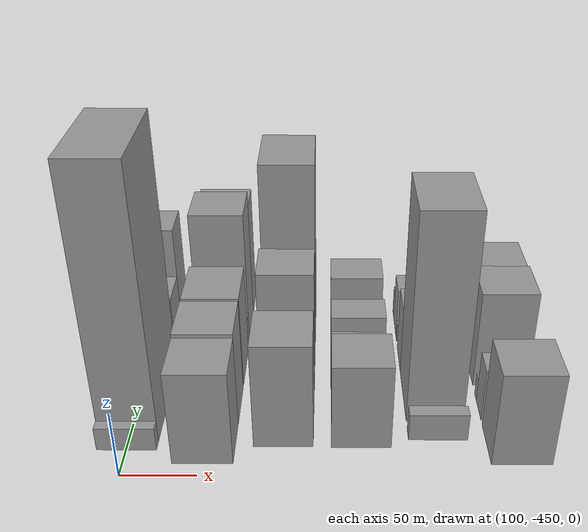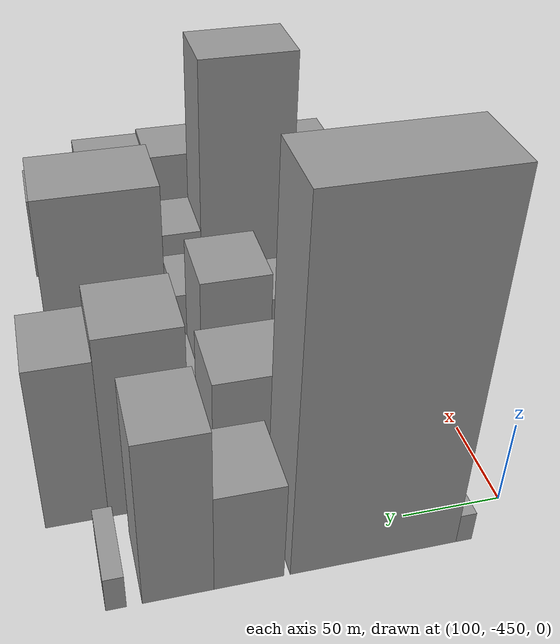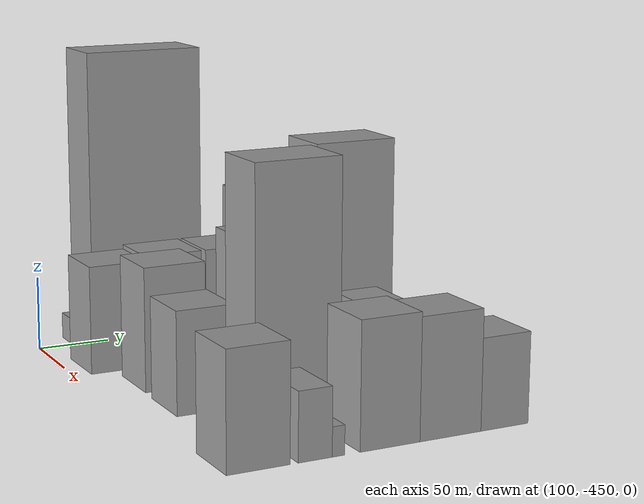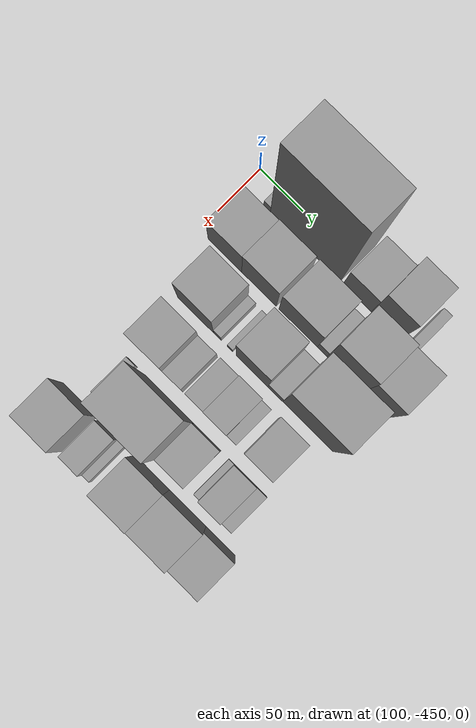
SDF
<sdf version="1.6">
 <world name="default">
  <model name="building_13">
   <static>1</static>
   <pose>100.0000 -422.3564 0 0.000000 0.000000 0.000000</pose>
   <link name="link">
    <pose>0 0 9.00 0 0 0</pose>
    <collision name="collision"><geometry><box><size>40.0000 7.9039 18.0000</size></box></geometry></collision>
    <visual name="visual">
     <cast_shadows>0</cast_shadows>
     <geometry><box><size>40.0000 7.9039 18.0000</size></box></geometry>
     <material>
      <script>
       <uri>model://grey_wall/materials/scripts</uri>
       <uri>model://grey_wall/materials/textures</uri>
       <name>vrc/grey_wall</name>
      </script>
     </material>
    </visual>
   </link>
  </model>
  <model name="building_14">
   <static>1</static>
   <pose>100.0000 -377.7284 0 0.000000 0.000000 0.000000</pose>
   <link name="link">
    <pose>0 0 102.00 0 0 0</pose>
    <collision name="collision"><geometry><box><size>40.0000 81.3520 204.0000</size></box></geometry></collision>
    <visual name="visual">
     <cast_shadows>0</cast_shadows>
     <geometry><box><size>40.0000 81.3520 204.0000</size></box></geometry>
     <material>
      <script>
       <uri>model://grey_wall/materials/scripts</uri>
       <uri>model://grey_wall/materials/textures</uri>
       <name>vrc/grey_wall</name>
      </script>
     </material>
    </visual>
   </link>
  </model>
  <model name="building_15">
   <static>1</static>
   <pose>100.0000 -317.7587 0 0.000000 0.000000 0.000000</pose>
   <link name="link">
    <pose>0 0 30.00 0 0 0</pose>
    <collision name="collision"><geometry><box><size>40.0000 32.5875 60.0000</size></box></geometry></collision>
    <visual name="visual">
     <cast_shadows>0</cast_shadows>
     <geometry><box><size>40.0000 32.5875 60.0000</size></box></geometry>
     <material>
      <script>
       <uri>model://grey_wall/materials/scripts</uri>
       <uri>model://grey_wall/materials/textures</uri>
       <name>vrc/grey_wall</name>
      </script>
     </material>
    </visual>
   </link>
  </model>
  <model name="building_16">
   <static>1</static>
   <pose>100.0000 -285.1396 0 0.000000 0.000000 0.000000</pose>
   <link name="link">
    <pose>0 0 49.50 0 0 0</pose>
    <collision name="collision"><geometry><box><size>40.0000 32.6508 99.0000</size></box></geometry></collision>
    <visual name="visual">
     <cast_shadows>0</cast_shadows>
     <geometry><box><size>40.0000 32.6508 99.0000</size></box></geometry>
     <material>
      <script>
       <uri>model://grey_wall/materials/scripts</uri>
       <uri>model://grey_wall/materials/textures</uri>
       <name>vrc/grey_wall</name>
      </script>
     </material>
    </visual>
   </link>
  </model>
  <model name="building_17">
   <static>1</static>
   <pose>100.0000 -257.1645 0 0.000000 0.000000 0.000000</pose>
   <link name="link">
    <pose>0 0 10.50 0 0 0</pose>
    <collision name="collision"><geometry><box><size>40.0000 9.2992 21.0000</size></box></geometry></collision>
    <visual name="visual">
     <cast_shadows>0</cast_shadows>
     <geometry><box><size>40.0000 9.2992 21.0000</size></box></geometry>
     <material>
      <script>
       <uri>model://grey_wall/materials/scripts</uri>
       <uri>model://grey_wall/materials/textures</uri>
       <name>vrc/grey_wall</name>
      </script>
     </material>
    </visual>
   </link>
  </model>
  <model name="building_62">
   <static>1</static>
   <pose>152.0000 -419.5877 0 0.000000 0.000000 0.000000</pose>
   <link name="link">
    <pose>0 0 36.00 0 0 0</pose>
    <collision name="collision"><geometry><box><size>40.0000 39.2582 72.0000</size></box></geometry></collision>
    <visual name="visual">
     <cast_shadows>0</cast_shadows>
     <geometry><box><size>40.0000 39.2582 72.0000</size></box></geometry>
     <material>
      <script>
       <uri>model://grey_wall/materials/scripts</uri>
       <uri>model://grey_wall/materials/textures</uri>
       <name>vrc/grey_wall</name>
      </script>
     </material>
    </visual>
   </link>
  </model>
  <model name="building_63">
   <static>1</static>
   <pose>152.0000 -379.9543 0 0.000000 0.000000 0.000000</pose>
   <link name="link">
    <pose>0 0 37.50 0 0 0</pose>
    <collision name="collision"><geometry><box><size>40.0000 40.0086 75.0000</size></box></geometry></collision>
    <visual name="visual">
     <cast_shadows>0</cast_shadows>
     <geometry><box><size>40.0000 40.0086 75.0000</size></box></geometry>
     <material>
      <script>
       <uri>model://grey_wall/materials/scripts</uri>
       <uri>model://grey_wall/materials/textures</uri>
       <name>vrc/grey_wall</name>
      </script>
     </material>
    </visual>
   </link>
  </model>
  <model name="building_64">
   <static>1</static>
   <pose>152.0000 -334.7092 0 0.000000 0.000000 0.000000</pose>
   <link name="link">
    <pose>0 0 37.50 0 0 0</pose>
    <collision name="collision"><geometry><box><size>40.0000 44.4817 75.0000</size></box></geometry></collision>
    <visual name="visual">
     <cast_shadows>0</cast_shadows>
     <geometry><box><size>40.0000 44.4817 75.0000</size></box></geometry>
     <material>
      <script>
       <uri>model://grey_wall/materials/scripts</uri>
       <uri>model://grey_wall/materials/textures</uri>
       <name>vrc/grey_wall</name>
      </script>
     </material>
    </visual>
   </link>
  </model>
  <model name="building_65">
   <static>1</static>
   <pose>152.0000 -306.8373 0 0.000000 0.000000 0.000000</pose>
   <link name="link">
    <pose>0 0 13.50 0 0 0</pose>
    <collision name="collision"><geometry><box><size>40.0000 11.2621 27.0000</size></box></geometry></collision>
    <visual name="visual">
     <cast_shadows>0</cast_shadows>
     <geometry><box><size>40.0000 11.2621 27.0000</size></box></geometry>
     <material>
      <script>
       <uri>model://grey_wall/materials/scripts</uri>
       <uri>model://grey_wall/materials/textures</uri>
       <name>vrc/grey_wall</name>
      </script>
     </material>
    </visual>
   </link>
  </model>
  <model name="building_66">
   <static>1</static>
   <pose>152.0000 -280.8992 0 0.000000 0.000000 0.000000</pose>
   <link name="link">
    <pose>0 0 55.50 0 0 0</pose>
    <collision name="collision"><geometry><box><size>40.0000 40.6140 111.0000</size></box></geometry></collision>
    <visual name="visual">
     <cast_shadows>0</cast_shadows>
     <geometry><box><size>40.0000 40.6140 111.0000</size></box></geometry>
     <material>
      <script>
       <uri>model://grey_wall/materials/scripts</uri>
       <uri>model://grey_wall/materials/textures</uri>
       <name>vrc/grey_wall</name>
      </script>
     </material>
    </visual>
   </link>
  </model>
  <model name="building_67">
   <static>1</static>
   <pose>152.0000 -245.4163 0 0.000000 0.000000 0.000000</pose>
   <link name="link">
    <pose>0 0 49.50 0 0 0</pose>
    <collision name="collision"><geometry><box><size>40.0000 30.3517 99.0000</size></box></geometry></collision>
    <visual name="visual">
     <cast_shadows>0</cast_shadows>
     <geometry><box><size>40.0000 30.3517 99.0000</size></box></geometry>
     <material>
      <script>
       <uri>model://grey_wall/materials/scripts</uri>
       <uri>model://grey_wall/materials/textures</uri>
       <name>vrc/grey_wall</name>
      </script>
     </material>
    </visual>
   </link>
  </model>
  <model name="building_109">
   <static>1</static>
   <pose>204.0000 -401.6124 0 0.000000 0.000000 0.000000</pose>
   <link name="link">
    <pose>0 0 40.50 0 0 0</pose>
    <collision name="collision"><geometry><box><size>40.0000 41.6831 81.0000</size></box></geometry></collision>
    <visual name="visual">
     <cast_shadows>0</cast_shadows>
     <geometry><box><size>40.0000 41.6831 81.0000</size></box></geometry>
     <material>
      <script>
       <uri>model://grey_wall/materials/scripts</uri>
       <uri>model://grey_wall/materials/textures</uri>
       <name>vrc/grey_wall</name>
      </script>
     </material>
    </visual>
   </link>
  </model>
  <model name="building_110">
   <static>1</static>
   <pose>204.0000 -376.3652 0 0.000000 0.000000 0.000000</pose>
   <link name="link">
    <pose>0 0 10.50 0 0 0</pose>
    <collision name="collision"><geometry><box><size>40.0000 8.8113 21.0000</size></box></geometry></collision>
    <visual name="visual">
     <cast_shadows>0</cast_shadows>
     <geometry><box><size>40.0000 8.8113 21.0000</size></box></geometry>
     <material>
      <script>
       <uri>model://grey_wall/materials/scripts</uri>
       <uri>model://grey_wall/materials/textures</uri>
       <name>vrc/grey_wall</name>
      </script>
     </material>
    </visual>
   </link>
  </model>
  <model name="building_111">
   <static>1</static>
   <pose>204.0000 -361.8574 0 0.000000 0.000000 0.000000</pose>
   <link name="link">
    <pose>0 0 7.50 0 0 0</pose>
    <collision name="collision"><geometry><box><size>40.0000 6.2043 15.0000</size></box></geometry></collision>
    <visual name="visual">
     <cast_shadows>0</cast_shadows>
     <geometry><box><size>40.0000 6.2043 15.0000</size></box></geometry>
     <material>
      <script>
       <uri>model://grey_wall/materials/scripts</uri>
       <uri>model://grey_wall/materials/textures</uri>
       <name>vrc/grey_wall</name>
      </script>
     </material>
    </visual>
   </link>
  </model>
  <model name="building_112">
   <static>1</static>
   <pose>204.0000 -336.4083 0 0.000000 0.000000 0.000000</pose>
   <link name="link">
    <pose>0 0 46.50 0 0 0</pose>
    <collision name="collision"><geometry><box><size>40.0000 36.6939 93.0000</size></box></geometry></collision>
    <visual name="visual">
     <cast_shadows>0</cast_shadows>
     <geometry><box><size>40.0000 36.6939 93.0000</size></box></geometry>
     <material>
      <script>
       <uri>model://grey_wall/materials/scripts</uri>
       <uri>model://grey_wall/materials/textures</uri>
       <name>vrc/grey_wall</name>
      </script>
     </material>
    </visual>
   </link>
  </model>
  <model name="building_113">
   <static>1</static>
   <pose>204.0000 -309.5176 0 0.000000 0.000000 0.000000</pose>
   <link name="link">
    <pose>0 0 15.00 0 0 0</pose>
    <collision name="collision"><geometry><box><size>40.0000 17.0876 30.0000</size></box></geometry></collision>
    <visual name="visual">
     <cast_shadows>0</cast_shadows>
     <geometry><box><size>40.0000 17.0876 30.0000</size></box></geometry>
     <material>
      <script>
       <uri>model://grey_wall/materials/scripts</uri>
       <uri>model://grey_wall/materials/textures</uri>
       <name>vrc/grey_wall</name>
      </script>
     </material>
    </visual>
   </link>
  </model>
  <model name="building_114">
   <static>1</static>
   <pose>204.0000 -272.1025 0 0.000000 0.000000 0.000000</pose>
   <link name="link">
    <pose>0 0 75.00 0 0 0</pose>
    <collision name="collision"><geometry><box><size>40.0000 57.7425 150.0000</size></box></geometry></collision>
    <visual name="visual">
     <cast_shadows>0</cast_shadows>
     <geometry><box><size>40.0000 57.7425 150.0000</size></box></geometry>
     <material>
      <script>
       <uri>model://grey_wall/materials/scripts</uri>
       <uri>model://grey_wall/materials/textures</uri>
       <name>vrc/grey_wall</name>
      </script>
     </material>
    </visual>
   </link>
  </model>
  <model name="building_155">
   <static>1</static>
   <pose>256.0000 -404.3459 0 0.000000 0.000000 0.000000</pose>
   <link name="link">
    <pose>0 0 33.00 0 0 0</pose>
    <collision name="collision"><geometry><box><size>40.0000 38.1281 66.0000</size></box></geometry></collision>
    <visual name="visual">
     <cast_shadows>0</cast_shadows>
     <geometry><box><size>40.0000 38.1281 66.0000</size></box></geometry>
     <material>
      <script>
       <uri>model://grey_wall/materials/scripts</uri>
       <uri>model://grey_wall/materials/textures</uri>
       <name>vrc/grey_wall</name>
      </script>
     </material>
    </visual>
   </link>
  </model>
  <model name="building_156">
   <static>1</static>
   <pose>256.0000 -374.8110 0 0.000000 0.000000 0.000000</pose>
   <link name="link">
    <pose>0 0 18.00 0 0 0</pose>
    <collision name="collision"><geometry><box><size>40.0000 20.9417 36.0000</size></box></geometry></collision>
    <visual name="visual">
     <cast_shadows>0</cast_shadows>
     <geometry><box><size>40.0000 20.9417 36.0000</size></box></geometry>
     <material>
      <script>
       <uri>model://grey_wall/materials/scripts</uri>
       <uri>model://grey_wall/materials/textures</uri>
       <name>vrc/grey_wall</name>
      </script>
     </material>
    </visual>
   </link>
  </model>
  <model name="building_157">
   <static>1</static>
   <pose>256.0000 -349.8889 0 0.000000 0.000000 0.000000</pose>
   <link name="link">
    <pose>0 0 18.00 0 0 0</pose>
    <collision name="collision"><geometry><box><size>40.0000 20.9024 36.0000</size></box></geometry></collision>
    <visual name="visual">
     <cast_shadows>0</cast_shadows>
     <geometry><box><size>40.0000 20.9024 36.0000</size></box></geometry>
     <material>
      <script>
       <uri>model://grey_wall/materials/scripts</uri>
       <uri>model://grey_wall/materials/textures</uri>
       <name>vrc/grey_wall</name>
      </script>
     </material>
    </visual>
   </link>
  </model>
  <model name="building_158">
   <static>1</static>
   <pose>256.0000 -326.5138 0 0.000000 0.000000 0.000000</pose>
   <link name="link">
    <pose>0 0 24.00 0 0 0</pose>
    <collision name="collision"><geometry><box><size>40.0000 25.8478 48.0000</size></box></geometry></collision>
    <visual name="visual">
     <cast_shadows>0</cast_shadows>
     <geometry><box><size>40.0000 25.8478 48.0000</size></box></geometry>
     <material>
      <script>
       <uri>model://grey_wall/materials/scripts</uri>
       <uri>model://grey_wall/materials/textures</uri>
       <name>vrc/grey_wall</name>
      </script>
     </material>
    </visual>
   </link>
  </model>
  <model name="building_159">
   <static>1</static>
   <pose>256.0000 -308.2112 0 0.000000 0.000000 0.000000</pose>
   <link name="link">
    <pose>0 0 12.00 0 0 0</pose>
    <collision name="collision"><geometry><box><size>40.0000 10.7575 24.0000</size></box></geometry></collision>
    <visual name="visual">
     <cast_shadows>0</cast_shadows>
     <geometry><box><size>40.0000 10.7575 24.0000</size></box></geometry>
     <material>
      <script>
       <uri>model://grey_wall/materials/scripts</uri>
       <uri>model://grey_wall/materials/textures</uri>
       <name>vrc/grey_wall</name>
      </script>
     </material>
    </visual>
   </link>
  </model>
  <model name="building_160">
   <static>1</static>
   <pose>256.0000 -278.2538 0 0.000000 0.000000 0.000000</pose>
   <link name="link">
    <pose>0 0 27.00 0 0 0</pose>
    <collision name="collision"><geometry><box><size>40.0000 31.1573 54.0000</size></box></geometry></collision>
    <visual name="visual">
     <cast_shadows>0</cast_shadows>
     <geometry><box><size>40.0000 31.1573 54.0000</size></box></geometry>
     <material>
      <script>
       <uri>model://grey_wall/materials/scripts</uri>
       <uri>model://grey_wall/materials/textures</uri>
       <name>vrc/grey_wall</name>
      </script>
     </material>
    </visual>
   </link>
  </model>
  <model name="building_199">
   <static>1</static>
   <pose>308.0000 -410.3328 0 0.000000 0.000000 0.000000</pose>
   <link name="link">
    <pose>0 0 10.50 0 0 0</pose>
    <collision name="collision"><geometry><box><size>40.0000 10.3147 21.0000</size></box></geometry></collision>
    <visual name="visual">
     <cast_shadows>0</cast_shadows>
     <geometry><box><size>40.0000 10.3147 21.0000</size></box></geometry>
     <material>
      <script>
       <uri>model://grey_wall/materials/scripts</uri>
       <uri>model://grey_wall/materials/textures</uri>
       <name>vrc/grey_wall</name>
      </script>
     </material>
    </visual>
   </link>
  </model>
  <model name="building_200">
   <static>1</static>
   <pose>308.0000 -367.8675 0 0.000000 0.000000 0.000000</pose>
   <link name="link">
    <pose>0 0 81.00 0 0 0</pose>
    <collision name="collision"><geometry><box><size>40.0000 56.6160 162.0000</size></box></geometry></collision>
    <visual name="visual">
     <cast_shadows>0</cast_shadows>
     <geometry><box><size>40.0000 56.6160 162.0000</size></box></geometry>
     <material>
      <script>
       <uri>model://grey_wall/materials/scripts</uri>
       <uri>model://grey_wall/materials/textures</uri>
       <name>vrc/grey_wall</name>
      </script>
     </material>
    </visual>
   </link>
  </model>
  <model name="building_201">
   <static>1</static>
   <pose>308.0000 -323.9216 0 0.000000 0.000000 0.000000</pose>
   <link name="link">
    <pose>0 0 27.00 0 0 0</pose>
    <collision name="collision"><geometry><box><size>40.0000 31.2757 54.0000</size></box></geometry></collision>
    <visual name="visual">
     <cast_shadows>0</cast_shadows>
     <geometry><box><size>40.0000 31.2757 54.0000</size></box></geometry>
     <material>
      <script>
       <uri>model://grey_wall/materials/scripts</uri>
       <uri>model://grey_wall/materials/textures</uri>
       <name>vrc/grey_wall</name>
      </script>
     </material>
    </visual>
   </link>
  </model>
  <model name="building_202">
   <static>1</static>
   <pose>308.0000 -296.2280 0 0.000000 0.000000 0.000000</pose>
   <link name="link">
    <pose>0 0 7.50 0 0 0</pose>
    <collision name="collision"><geometry><box><size>40.0000 6.1115 15.0000</size></box></geometry></collision>
    <visual name="visual">
     <cast_shadows>0</cast_shadows>
     <geometry><box><size>40.0000 6.1115 15.0000</size></box></geometry>
     <material>
      <script>
       <uri>model://grey_wall/materials/scripts</uri>
       <uri>model://grey_wall/materials/textures</uri>
       <name>vrc/grey_wall</name>
      </script>
     </material>
    </visual>
   </link>
  </model>
  <model name="building_203">
   <static>1</static>
   <pose>308.0000 -280.5920 0 0.000000 0.000000 0.000000</pose>
   <link name="link">
    <pose>0 0 21.00 0 0 0</pose>
    <collision name="collision"><geometry><box><size>40.0000 25.1604 42.0000</size></box></geometry></collision>
    <visual name="visual">
     <cast_shadows>0</cast_shadows>
     <geometry><box><size>40.0000 25.1604 42.0000</size></box></geometry>
     <material>
      <script>
       <uri>model://grey_wall/materials/scripts</uri>
       <uri>model://grey_wall/materials/textures</uri>
       <name>vrc/grey_wall</name>
      </script>
     </material>
    </visual>
   </link>
  </model>
  <model name="building_204">
   <static>1</static>
   <pose>308.0000 -262.1484 0 0.000000 0.000000 0.000000</pose>
   <link name="link">
    <pose>0 0 12.00 0 0 0</pose>
    <collision name="collision"><geometry><box><size>40.0000 11.7269 24.0000</size></box></geometry></collision>
    <visual name="visual">
     <cast_shadows>0</cast_shadows>
     <geometry><box><size>40.0000 11.7269 24.0000</size></box></geometry>
     <material>
      <script>
       <uri>model://grey_wall/materials/scripts</uri>
       <uri>model://grey_wall/materials/textures</uri>
       <name>vrc/grey_wall</name>
      </script>
     </material>
    </visual>
   </link>
  </model>
  <model name="building_248">
   <static>1</static>
   <pose>360.0000 -419.5492 0 0.000000 0.000000 0.000000</pose>
   <link name="link">
    <pose>0 0 36.00 0 0 0</pose>
    <collision name="collision"><geometry><box><size>40.0000 39.3435 72.0000</size></box></geometry></collision>
    <visual name="visual">
     <cast_shadows>0</cast_shadows>
     <geometry><box><size>40.0000 39.3435 72.0000</size></box></geometry>
     <material>
      <script>
       <uri>model://grey_wall/materials/scripts</uri>
       <uri>model://grey_wall/materials/textures</uri>
       <name>vrc/grey_wall</name>
      </script>
     </material>
    </visual>
   </link>
  </model>
  <model name="building_249">
   <static>1</static>
   <pose>360.0000 -384.0918 0 0.000000 0.000000 0.000000</pose>
   <link name="link">
    <pose>0 0 21.00 0 0 0</pose>
    <collision name="collision"><geometry><box><size>40.0000 21.5712 42.0000</size></box></geometry></collision>
    <visual name="visual">
     <cast_shadows>0</cast_shadows>
     <geometry><box><size>40.0000 21.5712 42.0000</size></box></geometry>
     <material>
      <script>
       <uri>model://grey_wall/materials/scripts</uri>
       <uri>model://grey_wall/materials/textures</uri>
       <name>vrc/grey_wall</name>
      </script>
     </material>
    </visual>
   </link>
  </model>
  <model name="building_250">
   <static>1</static>
   <pose>360.0000 -369.2960 0 0.000000 0.000000 0.000000</pose>
   <link name="link">
    <pose>0 0 9.00 0 0 0</pose>
    <collision name="collision"><geometry><box><size>40.0000 8.0205 18.0000</size></box></geometry></collision>
    <visual name="visual">
     <cast_shadows>0</cast_shadows>
     <geometry><box><size>40.0000 8.0205 18.0000</size></box></geometry>
     <material>
      <script>
       <uri>model://grey_wall/materials/scripts</uri>
       <uri>model://grey_wall/materials/textures</uri>
       <name>vrc/grey_wall</name>
      </script>
     </material>
    </visual>
   </link>
  </model>
  <model name="building_251">
   <static>1</static>
   <pose>360.0000 -335.4677 0 0.000000 0.000000 0.000000</pose>
   <link name="link">
    <pose>0 0 39.00 0 0 0</pose>
    <collision name="collision"><geometry><box><size>40.0000 39.6361 78.0000</size></box></geometry></collision>
    <visual name="visual">
     <cast_shadows>0</cast_shadows>
     <geometry><box><size>40.0000 39.6361 78.0000</size></box></geometry>
     <material>
      <script>
       <uri>model://grey_wall/materials/scripts</uri>
       <uri>model://grey_wall/materials/textures</uri>
       <name>vrc/grey_wall</name>
      </script>
     </material>
    </visual>
   </link>
  </model>
  <model name="building_252">
   <static>1</static>
   <pose>360.0000 -294.7032 0 0.000000 0.000000 0.000000</pose>
   <link name="link">
    <pose>0 0 37.50 0 0 0</pose>
    <collision name="collision"><geometry><box><size>40.0000 41.8929 75.0000</size></box></geometry></collision>
    <visual name="visual">
     <cast_shadows>0</cast_shadows>
     <geometry><box><size>40.0000 41.8929 75.0000</size></box></geometry>
     <material>
      <script>
       <uri>model://grey_wall/materials/scripts</uri>
       <uri>model://grey_wall/materials/textures</uri>
       <name>vrc/grey_wall</name>
      </script>
     </material>
    </visual>
   </link>
  </model>
  <model name="building_253">
   <static>1</static>
   <pose>360.0000 -257.0446 0 0.000000 0.000000 0.000000</pose>
   <link name="link">
    <pose>0 0 28.50 0 0 0</pose>
    <collision name="collision"><geometry><box><size>40.0000 33.4245 57.0000</size></box></geometry></collision>
    <visual name="visual">
     <cast_shadows>0</cast_shadows>
     <geometry><box><size>40.0000 33.4245 57.0000</size></box></geometry>
     <material>
      <script>
       <uri>model://grey_wall/materials/scripts</uri>
       <uri>model://grey_wall/materials/textures</uri>
       <name>vrc/grey_wall</name>
      </script>
     </material>
    </visual>
   </link>
  </model>
 </world>
</sdf>
